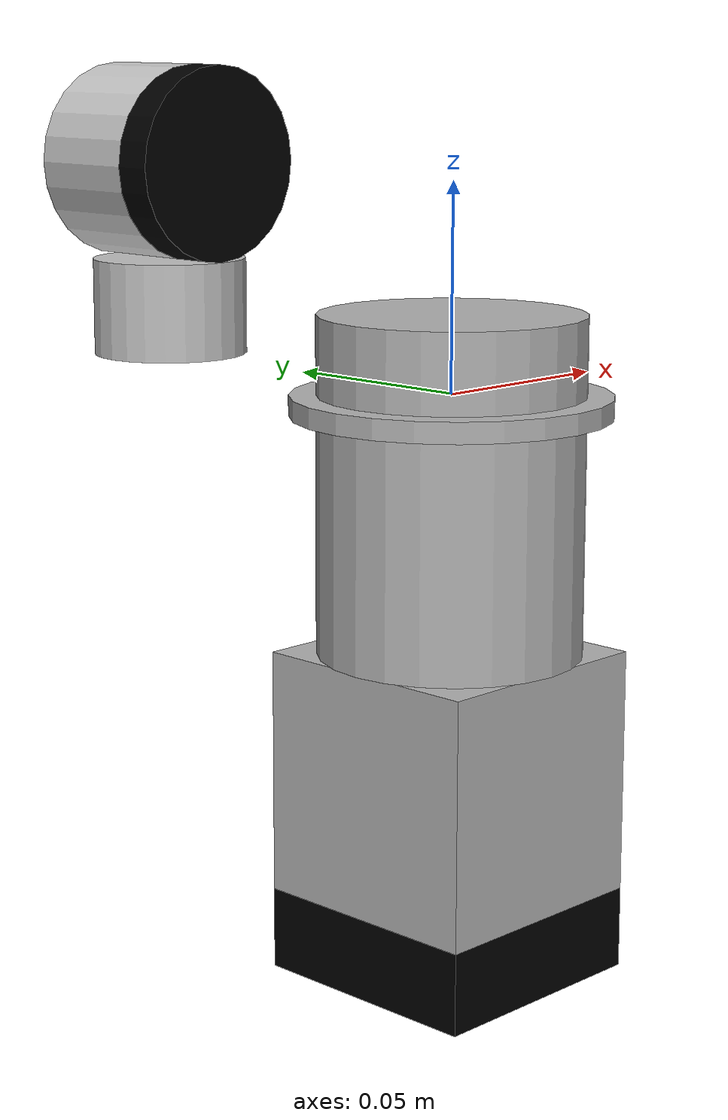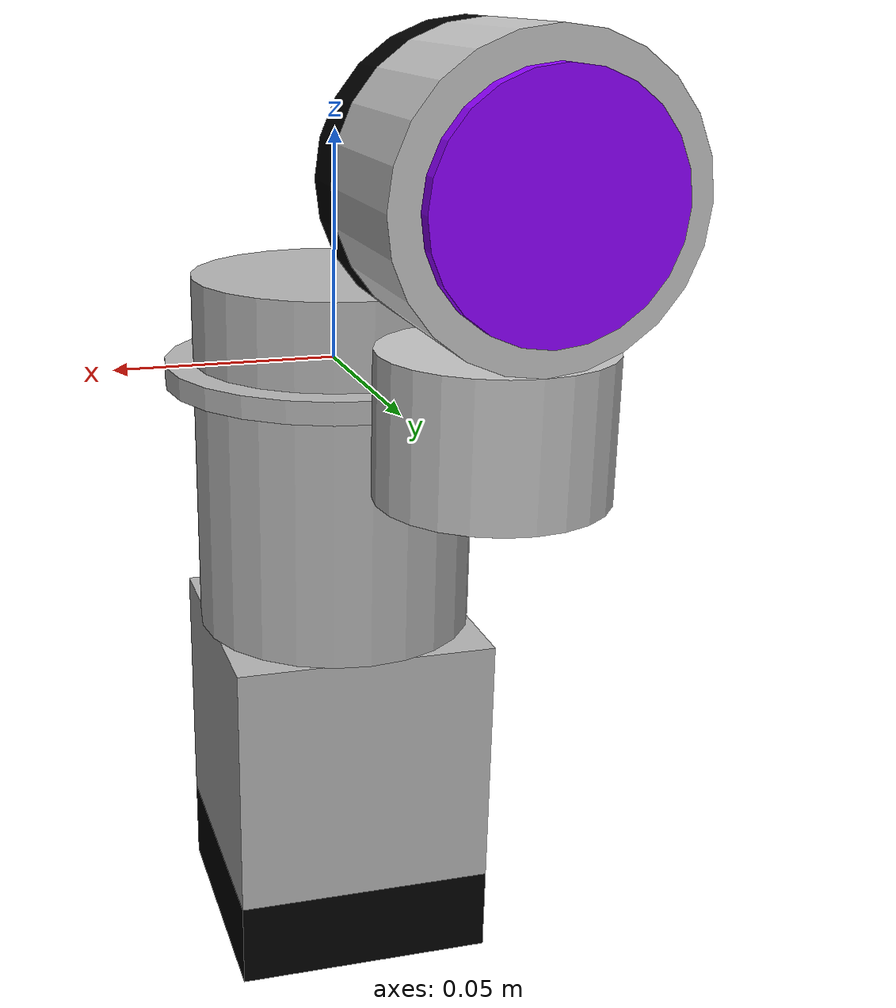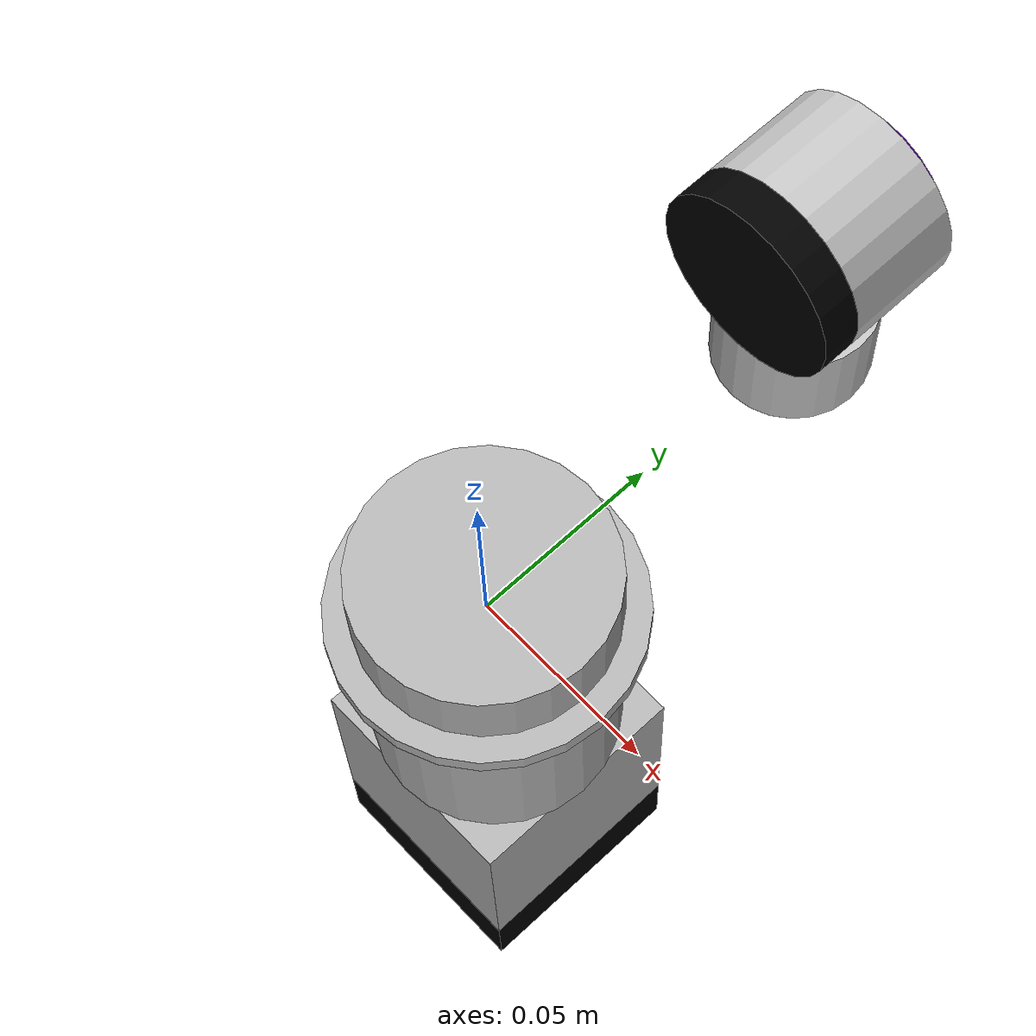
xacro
<?xml version="1.0" encoding="UTF-8"?>
<robot xmlns:xacro="http://wiki.ros.org/xacro" name="servo">

    <xacro:include filename="$(find bam_descriptions)/urdf/common.xacro" />
    <xacro:include filename="$(find bam_descriptions)/urdf/dummy_bam_fb/servo_macros.xacro"/>

    <link name="base_link"/>

    <joint name="shoulder_servo_link_joint" type="fixed">
        <parent link="base_link"/>
        <child link="shoulder_servo_test"/>
        <origin xyz="0 0 0" rpy="0 0 0"/>
    </joint>

    <xacro:shoulder_servo_link
        name="shoulder_servo_test"
        gearbox_length='0.0815'
        gearbox_diameter='0.064'
        gearbox_mass='1.266'
        gearbox_front_offset='0.019'
        motor_length='0.06'
        motor_width='0.06'
        motor_mass='0.738'
    />

    <joint name="wrist_1_link_joint" type="fixed">
        <parent link="base_link"/>
        <child link="wrist_link_test"/>
        <origin xyz="0 0.1 0" rpy="0 0 0"/>
    </joint>

    <xacro:wrist_link
        name="wrist_link_test"
        pipe_density="2700"
        pipe_diameter="0.04"
        pipe_wall_thickness="0.0015"
        wrist_length="0.05"
        wrist_servo_length="0.03"
        wrist_servo_diameter="0.05"
        wrist_servo_mass="0.01"
        wrist_front_offset="0.005"
        wrist_to_wrist_spacing="0.003"
        driver_length="0.01"/>

</robot>

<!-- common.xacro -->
<robot xmlns:xacro="http://www.ros.org/wiki/xacro">

  <xacro:property name="deg2rad" value="${pi/180}"/>
  <xacro:property name="rev2rad" value="${2*pi}"/>
  <xacro:property name="inch2m" value="${25.4/1000}"/>
  <xacro:property name="mm2m" value="${1/1000}"/>

  <xacro:macro name="cylinder_tube_link" params="name outer_radius inner_radius length density origin_offset mass=-1 material='StoglRobotics/LightGrey'">
    <!-- Length goes along z axis -->

      <link name="${name}">

        <xacro:if value="${mass == -1}">
          <xacro:property name="outer_area" value="${outer_radius * outer_radius * pi}"/>
          <xacro:property name="inner_area" value="${inner_radius * inner_radius * pi}"/>
          <xacro:property name="volume" value="${length * (outer_area - inner_area)}"/>
          <xacro:property name="mass" value="${volume * density}"/>
        </xacro:if>

        <visual>
          <origin xyz="0 0 ${origin_offset}" rpy="0 0 0"/>
          <geometry>
              <cylinder length="${length}" radius="${outer_radius}"/>
          </geometry>
          <material name="${material}"/>
        </visual>

        <collision>
          <origin xyz="0 0 ${origin_offset}" rpy="0 0 0"/>
          <geometry>
              <cylinder length="${length}" radius="${outer_radius}"/>
          </geometry>
        </collision>

        <xacro:cylinder_inertial length="${length}" outer_radius="${outer_radius}" inner_radius="${inner_radius}" mass="${mass}" origin_xyz="0 0 ${origin_offset}"/>

      </link>
  </xacro:macro>

  <xacro:macro name="rectangular_tube_link"
      params="name width length height wall_thickness density origin_offset mass=-1 material='StoglRobotics/LightGrey'"> -->

      <!-- Length goes along y, width goes along x, height goes along z -->

      <!-- length goes from hole to hole, while link_total_length goes from outer edge to outer edge. To center link around holes, add width/2 to both ends -->
      <xacro:if value="${mass == -1}">
        <xacro:property name="outer_area" value="${width * height}"/>
        <xacro:property name="inner_area" value="${(width - 2*wall_thickness) * (height - 2*wall_thickness)}"/>
        <xacro:property name="volume" value="${length * (outer_area - inner_area)}"/>
        <xacro:property name="mass" value="${volume * density}"/>
      </xacro:if>

      <link name="${name}">

        <!-- It may make more sense to have origin in center of thickness, but when you export as cade, usally is done from edge -->
        <visual>
            <origin xyz="0 ${origin_offset} ${height/2}" rpy="0 0 0"/>
            <geometry>
                <box size="${width} ${length} ${height}"/>
            </geometry>
            <material name="${material}"/>
        </visual>

        <collision>
            <origin xyz="0 ${origin_offset} ${height/2}" rpy="0 0 0"/>
            <geometry>
                <box size="${width} ${length} ${height}"/>
            </geometry>
        </collision>

        <xacro:solid_cuboid_inertial width="${width}" height="${length}" depth="${height}" mass="${mass}" origin_xyz="0 ${origin_offset} ${height/2}"/>
      </link>

  </xacro:macro>

  <xacro:macro name="rectangular_plate_link" params="name width length plate_thickness density origin_offset mass=-1 material='StoglRobotics/LightGrey'">
      <!-- Origin offset is usally length/2 or length/2 + width/2 + width/2  -->
      <!-- length goes from hole to hole, while link_total_length goes from outer edge to outer edge. To center link around holes, add width/2 to both ends -->

      <!-- Length goes along y, width goes along x, thickness goes along z -->

      <xacro:if value="${mass == -1}">
        <xacro:property name="volume" value="${length * width * plate_thickness}"/>
        <xacro:property name="mass" value="${volume * density}"/>
      </xacro:if>

      <!-- It may make more sense to have origin in center of thickness, but when you export as cade, usally is done from edge -->
      <link name="${name}">

      <visual>
          <origin xyz="0 ${origin_offset} ${plate_thickness/2}" rpy="0 0 0"/>
          <geometry>
              <box size="${width} ${length} ${plate_thickness}"/>
          </geometry>
          <material name="${material}"/>
      </visual>

      <collision>
          <origin xyz="0 ${origin_offset} ${plate_thickness/2}" rpy="0 0 0"/>
          <geometry>
              <box size="${width} ${length} ${plate_thickness}"/>
          </geometry>
      </collision>

      <xacro:solid_cuboid_inertial width="${width}" height="${length}" depth="${plate_thickness}" mass="${mass}" origin_xyz="0 ${origin_offset} ${plate_thickness/2}"/>
      </link>

  </xacro:macro>

  <!-- https://en.wikipedia.org/wiki/List_of_moments_of_inertia#:~:text=Solid%20cuboid%20of%20width -->
  <!-- Inertia properties for wrist_link, scoped to this macro only -->
  <!-- Width goes along x, height goes along y, depth goes along z -->
  <xacro:macro name="solid_cuboid_inertial" params="width height depth mass origin_xyz">
      <xacro:property name="inertia_xx" value="${(1/12) * mass * (height * height + depth * depth)}"/>
      <xacro:property name="inertia_yy" value="${(1/12) * mass * (width * width + depth * depth)}"/>
      <xacro:property name="inertia_zz" value="${(1/12) * mass * (width * width + height * height)}"/>
      <inertial>
          <origin xyz="${origin_xyz}"/>
          <mass value="${mass}"/>
          <inertia ixx="${inertia_xx}" ixy="0" ixz="0"
                    iyy="${inertia_yy}" iyz="0"
                    izz="${inertia_zz}"/>
      </inertial>
  </xacro:macro>

  <!-- https://en.wikipedia.org/wiki/List_of_moments_of_inertia#:~:text=%5D-,Solid%20cylinder%20of,-radius%20r%2C%20height -->
  <!-- Inertia properties for motor block, scoped to this macro only -->
  <!-- I initally thought it should be outer_radius - inner_radius, but actually a hollow cylinder should have a higher interia! as more mass further away -->
  <xacro:macro name="cylinder_inertial" params="length outer_radius mass origin_xyz inner_radius=0">
      <xacro:property name="inertia_xx" value="${(1/12) * mass * (3*(outer_radius*outer_radius + inner_radius*inner_radius) + length*length)}"/>
      <xacro:property name="inertia_yy" value="${(1/12) * mass * (3*(outer_radius*outer_radius + inner_radius*inner_radius) + length*length)}"/>
      <xacro:property name="inertia_zz" value="${0.5*mass*(outer_radius*outer_radius + inner_radius*inner_radius)}"/>
      <inertial>
          <origin xyz="${origin_xyz}"/>
          <mass value="${mass}"/>
          <inertia ixx="${inertia_xx}" ixy="0" ixz="0"
                    iyy="${inertia_yy}" iyz="0"
                    izz="${inertia_zz}"/>
      </inertial>
  </xacro:macro>

<xacro:macro name="dummy_inertial">
<!-- Super small interia to not effect dynamics and small rviz interia box -->
    <inertial>
        <mass value="0.0001"/>
        <origin xyz="0 0 0" rpy="0 0 0"/>
        <inertia
            ixx="0.001" ixy="0.00001" ixz="0.00001"
            iyy="0.001" iyz="0.00001"
            izz="0.001"/>
    </inertial>
</xacro:macro>

<xacro:macro name="dummy_link">

  <!-- Small visual box so that link can be turned off in rviz -->
  <visual>
    <origin xyz="0 0 0" rpy="0 0 0"/>
    <geometry>
      <box size="0.001 0.001 0.001"/>
    </geometry>
    <material name="transparent_gray">
      <color rgba="0.5 0.5 0.5 0.1"/>
    </material>
  </visual>

  <xacro:dummy_inertial/>

</xacro:macro>

  <material name="StoglRobotics/Violet">
    <color rgba="${102/255} ${46/255} ${145/255} 1.0"/>
    <ambient>1 0 0 1</ambient>
    <diffuse>1 0 0 1</diffuse>
    <specular>0.1 0.1 0.1 1</specular>
    <emissive>0 0 0 0</emissive>
  </material>

  <material name="StoglRobotics/DarkGrey">
    <color rgba="${51/255} ${51/255} ${51/255} 1.0"/>
    <ambient>1 0 0 1</ambient>
    <diffuse>1 0 0 1</diffuse>
    <specular>0.1 0.1 0.1 1</specular>
    <emissive>0 0 0 0</emissive>
  </material>

  <material name="StoglRobotics/LightGrey">
    <color rgba="${194/255} ${194/255} ${194/255} 1.0"/>
    <ambient>1 0 0 1</ambient>
    <diffuse>1 0 0 1</diffuse>
    <specular>0.1 0.1 0.1 1</specular>
    <emissive>0 0 0 0</emissive>
  </material>

  <material name="Ghost">
    <color rgba="${194/255} ${194/255} ${194/255} 0.5"/>
    <ambient>1 0 0 1</ambient>
    <diffuse>1 0 0 1</diffuse>
    <specular>0.1 0.1 0.1 1</specular>
    <emissive>0 0 0 0</emissive>
  </material>

  <material name="Black">
    <color rgba="${0/255} ${0/255} ${0/255} 1"/>
    <ambient>1 0 0 1</ambient>
    <diffuse>1 0 0 1</diffuse>
    <specular>0.1 0.1 0.1 1</specular>
    <emissive>0 0 0 0</emissive>
  </material>

  <material name="White">
    <color rgba="${255/255} ${255/255} ${255/255} 1"/>
    <ambient>1 0 0 1</ambient>
    <diffuse>1 0 0 1</diffuse>
    <specular>0.1 0.1 0.1 1</specular>
    <emissive>0 0 0 0</emissive>
  </material>

  <material name="Red">
    <color rgba="1.0 0.0 0.0 1.0"/>
    <ambient>1 0 0 1</ambient>
    <diffuse>1 0 0 1</diffuse>
    <specular>0.1 0.1 0.1 1</specular>
    <emissive>0 0 0 0</emissive>
  </material>

  <material name="Orange">
    <color rgba="1.0 0.55 0.0 1.0"/>
    <ambient>1 0.5 0 1</ambient>
    <diffuse>1 0.5 0 1</diffuse>
    <specular>0.1 0.1 0.1 1</specular>
    <emissive>0 0 0 0</emissive>
  </material>

  <material name="Yellow">
    <color rgba="1.0 1.0 0.0 1.0"/>
    <ambient>1 1 0 1</ambient>
    <diffuse>1 1 0 1</diffuse>
    <specular>0.1 0.1 0.1 1</specular>
    <emissive>0 0 0 0</emissive>
  </material>

  <material name="Green">
    <color rgba="0.0 1.0 0.0 1.0"/>
    <ambient>0 1 0 1</ambient>
    <diffuse>0 1 0 1</diffuse>
    <specular>0.1 0.1 0.1 1</specular>
    <emissive>0 0 0 0</emissive>
  </material>

  <material name="Blue">
    <color rgba="0.0 0.0 1.0 1.0"/>
    <ambient>0 0 1 1</ambient>
    <diffuse>0 0 1 1</diffuse>
    <specular>0.1 0.1 0.1 1</specular>
    <emissive>0 0 0 0</emissive>
  </material>

  <material name="Indigo">
    <color rgba="0.29 0.0 0.51 1.0"/>
    <ambient>0.25 0 0.45 1</ambient>
    <diffuse>0.25 0 0.45 1</diffuse>
    <specular>0.1 0.1 0.1 1</specular>
    <emissive>0 0 0 0</emissive>
  </material>

  <material name="Violet">
    <color rgba="0.56 0.0 1.0 1.0"/>
    <ambient>0.5 0 1 1</ambient>
    <diffuse>0.5 0 1 1</diffuse>
    <specular>0.1 0.1 0.1 1</specular>
    <emissive>0 0 0 0</emissive>
  </material>

</robot>

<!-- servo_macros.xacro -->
<robot xmlns:xacro="http://wiki.ros.org/xacro" name="shoulder_servo_macro">

<!-- As URDF can only have 1 interial tag, you need to use multiple links -->
    <xacro:macro name="shoulder_servo_link"
    params="name=''
            gearbox_length=0.0815
            gearbox_diameter=0.064
            gearbox_mass=0.01
            gearbox_front_offset=0.019
            motor_length=0.06
            motor_width=0.06
            motor_mass=0.01
            driver_length=0.02
            collision=true
            ">

        <link name="${name}"/>

        <joint name="${name}_joint" type="fixed">
            <parent link="${name}"/>
            <child link="${name}_gear_box"/>
            <origin xyz="0 0 ${gearbox_front_offset}" rpy="0 0 0"/>
        </joint>

        <link name="${name}_gear_box">

        <!-- Gearbox Cylinder -->
            <visual>
                <origin xyz="0 0 ${-gearbox_length/2}" rpy="0 0 0"/>
                <geometry>
                    <cylinder length="${gearbox_length}" radius="${gearbox_diameter/2}"/>
                </geometry>
                <material name="grey">
                    <color rgba="0.7 0.7 0.7 1.0"/>
                </material>
            </visual>

            <xacro:if value="${collision}">
                <collision>
                    <origin xyz="0 0 ${-gearbox_length/2}" rpy="0 0 0"/>
                    <geometry>
                        <cylinder length="${gearbox_length}" radius="${gearbox_diameter/2}"/>
                    </geometry>
                </collision>
            </xacro:if>

            <xacro:cylinder_inertial length="${gearbox_length}" outer_radius="${gearbox_diameter/2}" mass="${gearbox_mass}" origin_xyz="0 0 ${-gearbox_length/2}"/>

        <!-- Gearbox Flange -->
            <xacro:property name="flange_length" value="0.005"/>
            <visual>
                <origin xyz="0 0 ${-gearbox_front_offset - flange_length/2}" rpy="0 0 0"/>
                <geometry>
                    <cylinder length="${flange_length}" radius="${1.2*gearbox_diameter/2}"/>
                </geometry>
                <material name="grey">
                    <color rgba="0.7 0.7 0.7 1.0"/>
                </material>
            </visual>

        </link>

        <joint name="${name}_gearbox_motor_joint" type="fixed">
            <parent link="${name}_gear_box"/>
            <child link="${name}_motor"/>
            <origin xyz="0 0 ${-gearbox_length}" rpy="0 0 0"/>
        </joint>

        <link name="${name}_motor">
            <visual>
                <origin xyz="0 0 ${-motor_length/2}" rpy="0 0 0"/>
                <geometry>
                    <box size="${motor_width} ${motor_width} ${motor_length}"/>
                </geometry>
                <material name="grey">
                    <color rgba="0.7 0.7 0.7 1.0"/>
                </material>
            </visual>

            <xacro:if value="${collision}">
                <collision>
                    <origin xyz="0 0 ${-motor_length/2}" rpy="0 0 0"/>
                    <geometry>
                        <box size="${motor_width} ${motor_width} ${motor_length}"/>
                    </geometry>
                </collision>
            </xacro:if>

            <xacro:solid_cuboid_inertial width="${motor_width}" height="${motor_width}" depth="${motor_length}" mass="${motor_mass}" origin_xyz="0 0 ${-motor_length/2}"/>

        </link>

        <joint name="${name}_driver_joint" type="fixed">
            <parent link="${name}_motor"/>
            <child link="${name}_driver"/>
            <origin xyz="0 0 ${-motor_length}" rpy="0 0 0"/>
        </joint>

        <link name="${name}_driver">
            <visual>
                <origin xyz="0 0 ${-driver_length/2}" rpy="0 0 0"/>
                <geometry>
                    <box size="${motor_width} ${motor_width} ${driver_length}"/>
                </geometry>
                <material name="Black"/>
            </visual>

            <xacro:if value="${collision}">
                <collision>
                    <origin xyz="0 0 ${-driver_length/2}" rpy="0 0 0"/>
                    <geometry>
                        <box size="${motor_width} ${motor_width} ${driver_length}"/>
                    </geometry>
                </collision>
            </xacro:if>
        </link>

    </xacro:macro>

   <xacro:macro name="wrist_link"
   params="name
           pipe_density=2700
           pipe_mass=-1
           pipe_diameter=0.04
           pipe_wall_thickness=0.0015
           wrist_length=0.05
           wrist_servo_length=0.03
           wrist_servo_diameter=0.05
           wrist_servo_mass=0.01
           wrist_front_offset=0.005
           wrist_to_wrist_spacing=0.003
           driver_length=0.01">

        <xacro:property name="pipe_inner_radius" value="${(pipe_diameter - 2*pipe_wall_thickness)/2}"/>

        <link name="${name}">

            <!-- Mounting Plate -->
            <visual>
                <origin xyz="0 ${wrist_front_offset + wrist_servo_length/2 + wrist_to_wrist_spacing/2} ${wrist_length}" rpy="${-pi/2} 0 0"/>
                <geometry>
                    <cylinder length="${wrist_to_wrist_spacing}" radius="${wrist_servo_diameter*0.8/2 }"/>
                </geometry>
                <material name="Violet"/>
            </visual>

            <!-- Driver -->
            <visual>
                <origin xyz="0 ${wrist_front_offset - wrist_servo_length/2 - driver_length/2} ${wrist_length}" rpy="${-pi/2} 0 0"/>

                <geometry>
                    <cylinder length="${driver_length}" radius="${wrist_servo_diameter/2 }"/>
                </geometry>
                <material name="Black"/>
            </visual>
        </link>

        <xacro:cylinder_tube_link
            name="${name}_pipe"
            outer_radius="${pipe_diameter/2}"
            inner_radius="${pipe_inner_radius}"
            length="${wrist_length - wrist_servo_diameter/2}"
            density="${pipe_density}"
            mass="${pipe_mass}"
            origin_offset="${(wrist_length - wrist_servo_diameter/2)/2}"
            />

        <joint name="${name}_to_${name}_pipe_joint" type="fixed">
            <parent link="${name}"/>
            <child link="${name}_pipe"/>
            <origin xyz="0 0 0" rpy="0 0 0"/>
        </joint>

            <xacro:cylinder_tube_link
            name="${name}_servo"
            outer_radius="${wrist_servo_diameter/2}"
            inner_radius="0"
            length="${wrist_servo_length}"
            density="N/A"
            origin_offset="0"
            mass="${wrist_servo_mass}"
            />

            <joint name="${name}_to_${name}_servo_joint" type="fixed">
            <parent link="${name}"/>
            <child link="${name}_servo"/>
            <origin xyz="0 ${wrist_front_offset} ${wrist_length}" rpy="${-pi/2} 0 0"/>
        </joint>

    </xacro:macro>

</robot>
